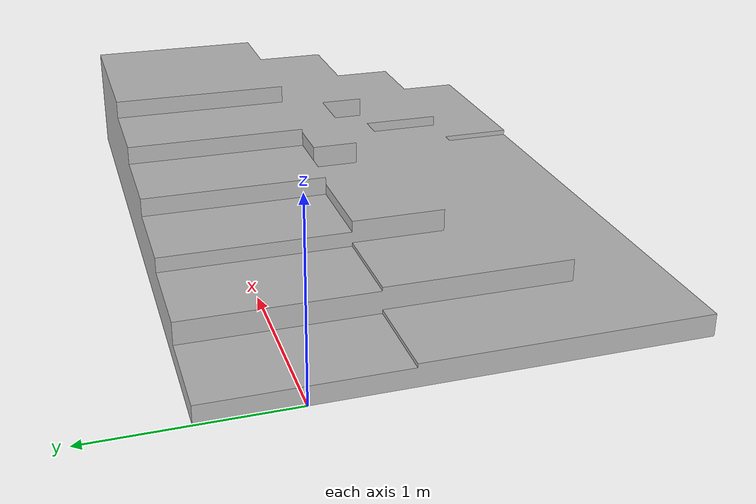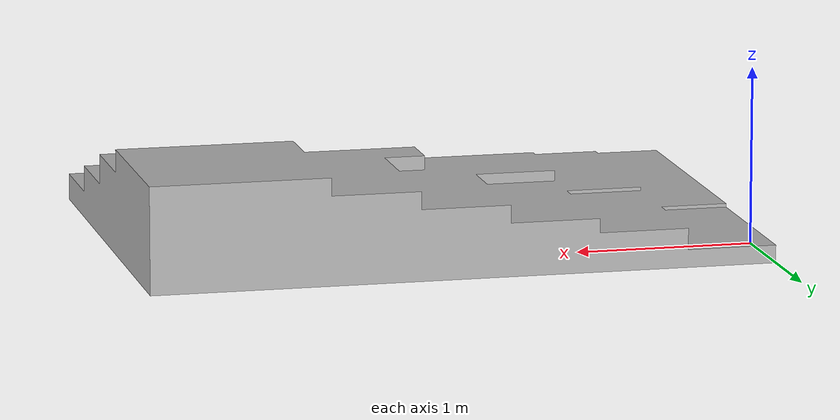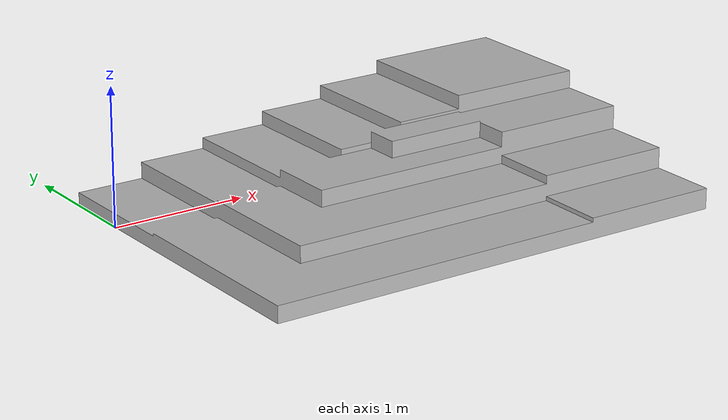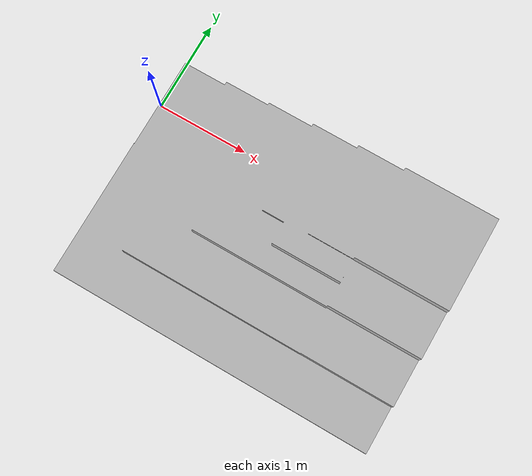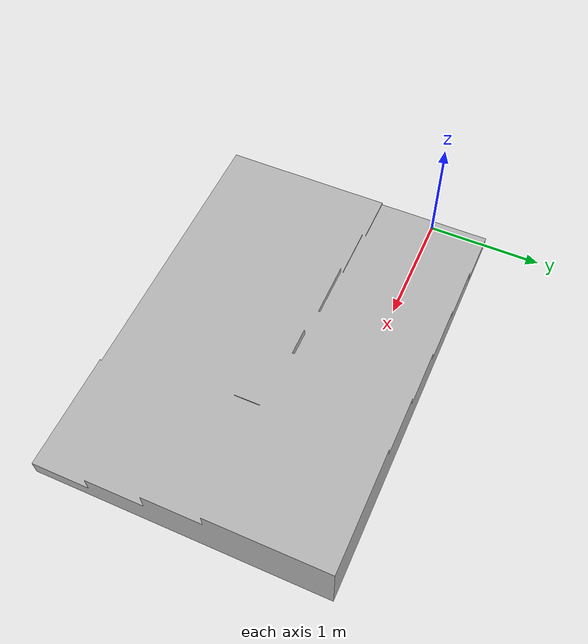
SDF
<?xml version="1.0" ?>
<sdf version="1.4">
	<model name="complex_stairs">
		<static>true</static>
		<link name="link">
			<pose>0 0 0 1.57 0 0</pose>
			<collision name="collision">
				<geometry>
					<mesh>
                                                <uri>model://complex_stairs_1/mesh/stairs.dae</uri>
						<scale>1.0 1.0 1.0</scale>
					</mesh>
				</geometry>
			</collision>
			<visual name="visual">
				<geometry>
					<mesh>
                                                <uri>model://complex_stairs_1/mesh/stairs.dae</uri>
						<scale>1.0 1.0 1.0</scale>
					</mesh>
				</geometry>
			</visual>
		</link>
	</model>
</sdf>
